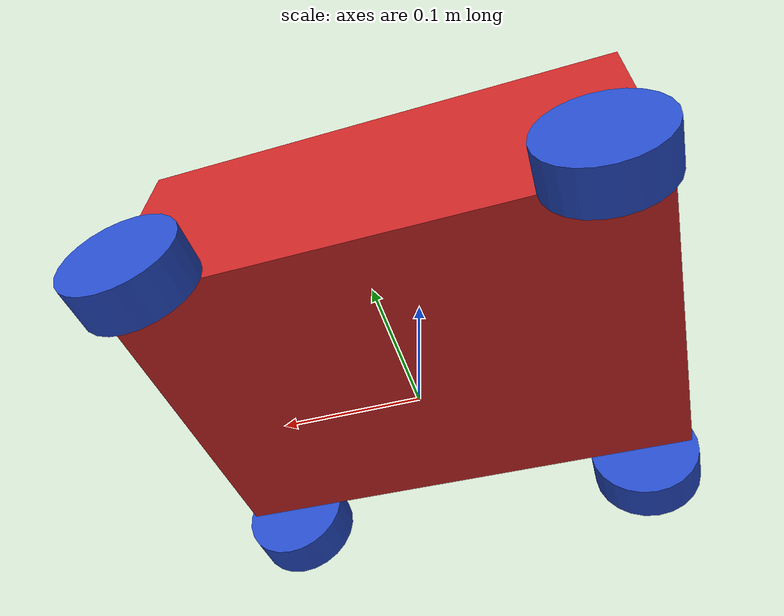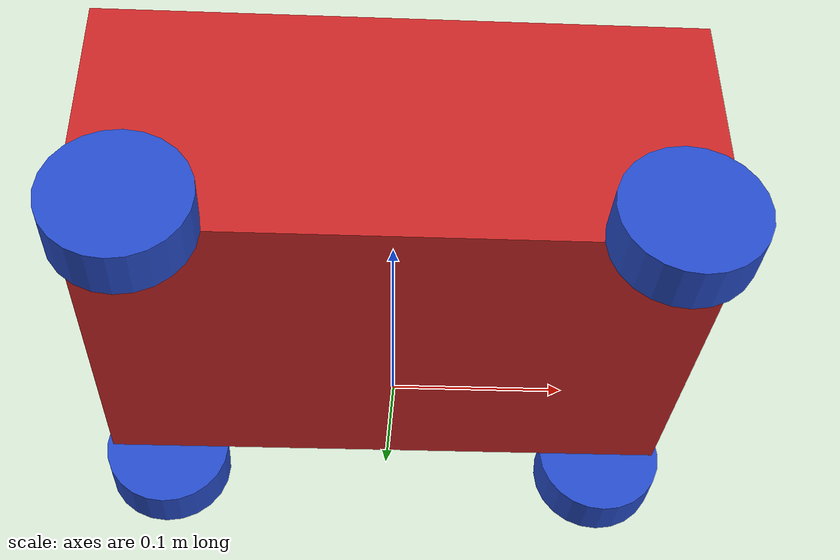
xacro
<?xml version="1.0" ?>
<robot xmlns:xacro="http://www.ros.org/wiki/xacro">

    <xacro:property name="chassis_length" value="0.370" />
    <xacro:property name="chassis_width" value="0.250" />
    <xacro:property name="chassis_height" value="0.160" />
    <xacro:property name="wheel_radius" value="0.041" />
    <xacro:property name="wheel_length" value="0.032" />

    <link name="base_link"/>

    <link name="chassis">
        <visual>
            <geometry>
                <box size="${chassis_length} ${chassis_width} ${chassis_height}" />
            </geometry>
            <origin xyz="0 0 ${chassis_height / 2.0}" rpy="0 0 0" />
            <material name="red"/>
        </visual>
        <collision>
            <origin xyz="0 0 0" rpy="0 0 0"/>
            <geometry>
                <box size="${chassis_length} ${chassis_width} ${chassis_height}" />
            </geometry>
        </collision>
        <xacro:box_inertia m="5.0" l="${chassis_length}" w="${chassis_width}" h="${chassis_height}"
                    xyz="0 0 ${chassis_height / 2.0}" rpy="0 0 0" />
    </link>

    <xacro:macro name="wheel_link" params="prefix">
        <link name="${prefix}_wheel_link">
            <visual>
                <geometry>
                    <cylinder radius="${wheel_radius}" length="${wheel_length}" />
                </geometry>
                <origin xyz="0 0 0" rpy="${pi / 2.0} 0 0" />
                <material name="blue" />
            </visual>
            <xacro:cylinder_inertia m="1.0" r="${wheel_radius}" h="${wheel_length}"
                                    xyz="0 0 0" rpy="${pi / 2.0} 0 0" />
        </link>
    </xacro:macro>

    <xacro:wheel_link prefix="front_left"/>
    <xacro:wheel_link prefix="front_right"/>
    <xacro:wheel_link prefix="rear_left"/>
    <xacro:wheel_link prefix="rear_right"/>

    <link name="front_left_steer_link">
        <visual>
            <origin xyz="0 0 0" rpy="0 0 0"/>
            <geometry>
                <box size="${chassis_height/10} ${chassis_height/10} ${chassis_height/10}"/>
            </geometry>
        </visual>
        <xacro:box_inertia m="0.01" l="${chassis_height/10}" w="${chassis_height/10}" h="${chassis_height/10}" xyz="0 0 0" rpy="0 0 0"/>
    </link>

    <link name="front_right_steer_link">
        <visual>
            <origin xyz="0 0 0" rpy="0 0 0"/>
            <geometry>
                <box size="${chassis_height/10} ${chassis_height/10} ${chassis_height/10}"/>
            </geometry>
        </visual>
        <xacro:box_inertia m="0.01" l="${chassis_height/10}" w="${chassis_height/10}" h="${chassis_height/10}" xyz="0 0 0" rpy="0 0 0"/>
    </link>

    <joint name="base_joint" type="fixed">
        <parent link="base_link"/>
        <child link="chassis"/>
        <origin xyz="0 0 ${wheel_radius/2}" rpy="0 0 0"/>
    </joint>

    <joint name="front_left_steer_chassis_joint" type="revolute">
        <parent link="chassis"/>
        <child link="front_left_steer_link"/>
        <origin xyz="${chassis_length - (3*chassis_length/5)} ${(chassis_width + wheel_length) / 2} 0" rpy="0 0 0"/>
        <axis xyz="0 0 1"/>
        <limit effort="100" lower="-0.5" upper="0.5" velocity="10"/>
    </joint>

    <joint name="front_left_wheel_steer_joint" type="continuous">
        <parent link="front_left_steer_link"/>
        <child link="front_left_wheel_link"/>
        <origin xyz="0 0 0" rpy="0 0 0"/>
        <axis xyz="0 1 0"/>
    </joint>

    <joint name="front_right_steer_chassis_joint" type="revolute">
        <parent link="chassis"/>
        <child link="front_right_steer_link"/>
        <origin xyz="${chassis_length - (3*chassis_length/5)} ${-(chassis_width + wheel_length) / 2} 0" rpy="0 0 0"/>
        <axis xyz="0 0 1"/>
        <limit effort="100" lower="-0.5" upper="0.5" velocity="10"/>
    </joint>

    <joint name="front_right_wheel_steer_joint" type="continuous">
        <parent link="front_right_steer_link"/>
        <child link="front_right_wheel_link"/>
        <origin xyz="0 0 0" rpy="0 0 0"/>
        <axis xyz="0 1 0"/>
    </joint>

    <joint name="rear_left_wheel_chassis_joint" type="continuous">
        <parent link="chassis"/>
        <child link="rear_left_wheel_link"/>
        <origin xyz="${-chassis_length + (3*chassis_length/5)} ${(chassis_width + wheel_length) / 2} 0" rpy="0 0 0"/>
        <axis xyz="0 1 0"/>
    </joint>

    <joint name="rear_right_wheel_chassis_joint" type="continuous">
        <parent link="chassis"/>
        <child link="rear_right_wheel_link"/>
        <origin xyz="${-chassis_length + (3*chassis_length/5)} ${-(chassis_width + wheel_length) / 2} 0" rpy="0 0 0"/>
        <axis xyz="0 1 0"/>
    </joint>

</robot>
